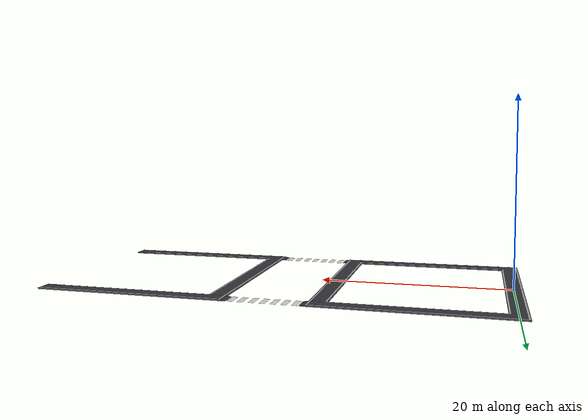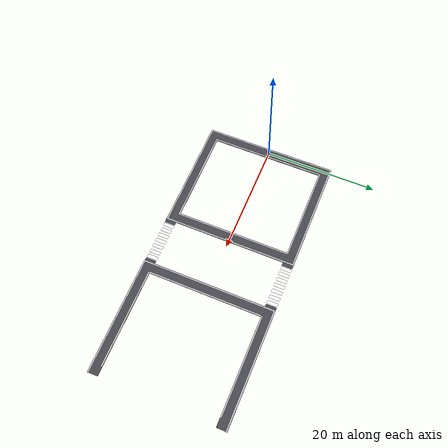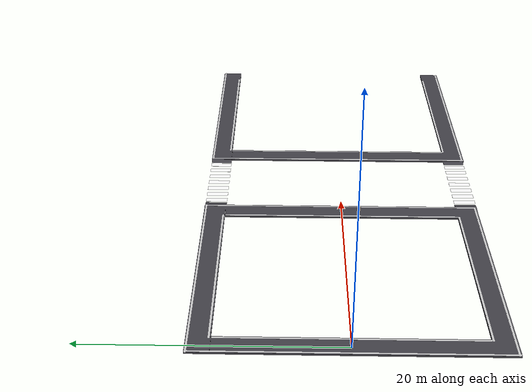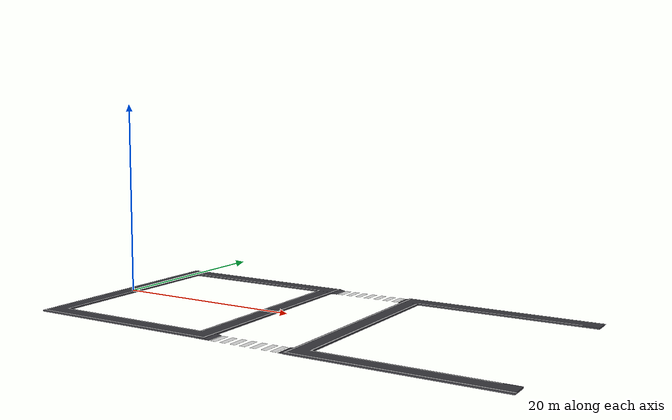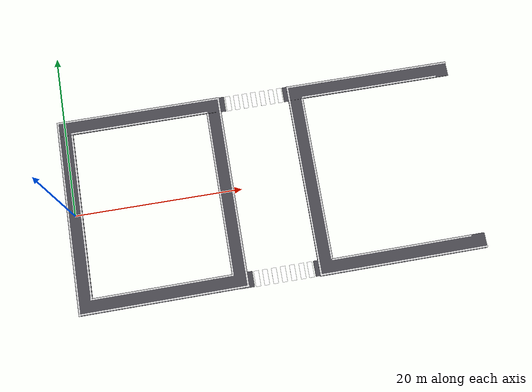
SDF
<?xml version="1.0" ?>
<sdf version="1.5">
<model name="sidewalk">
  <static>true</static>
  <link name="sidewalk_link">

  <visual name="sidewalk">
    <pose>0 0 0 0 0 0</pose>
    <geometry>
      <mesh><uri>model://sidewalk/meshes/sidewalk.dae</uri><scale>1 1 1</scale></mesh>
    </geometry>
  </visual>

  <collision name="sidewalk">
    <pose>0 0 0 0 0 0</pose>
    <geometry>
      <mesh><uri>model://sidewalk/meshes/sidewalk.dae</uri><scale>1 1 1</scale></mesh>
    </geometry>
  </collision>

  </link>
</model>
</sdf>
